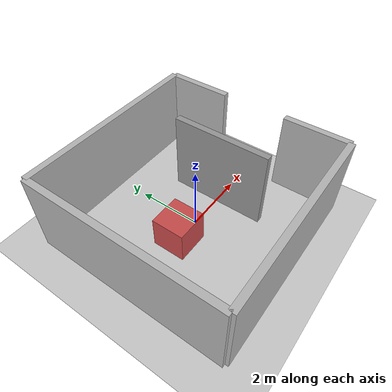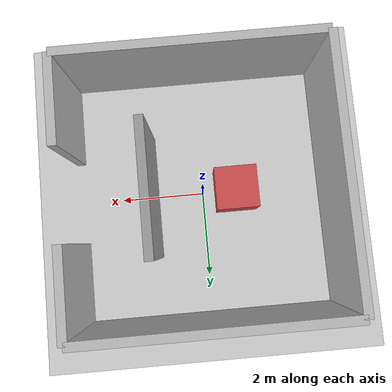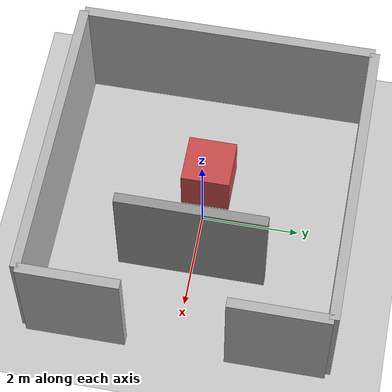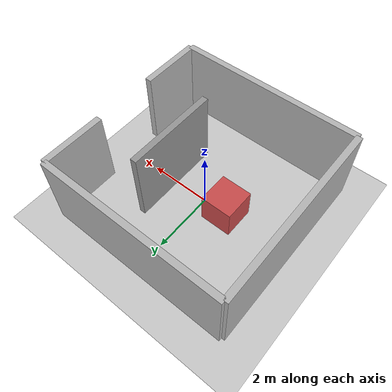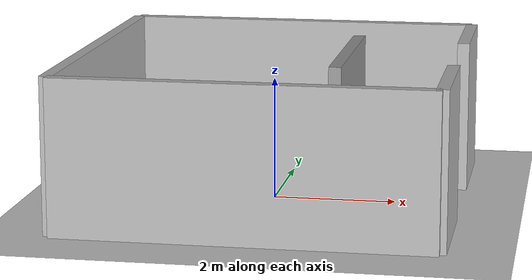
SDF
<?xml version="1.0" ?>
<sdf version="1.9">
  <world name="simple">

    <physics name="1ms" type="ignored">
      <max_step_size>0.001</max_step_size>
      <real_time_factor>1</real_time_factor>
      <real_time_update_rate>1000</real_time_update_rate>
    </physics>

    <plugin name="gz::sim::systems::Physics"
            filename="ignition-gazebo-physics-system"/>
    <plugin name="gz::sim::systems::UserCommands"
            filename="ignition-gazebo-user-commands-system"/>
    <plugin name="gz::sim::systems::SceneBroadcaster"
            filename="ignition-gazebo-scene-broadcaster-system"/>
    <plugin name="gz::sim::systems::Contact"
            filename="ignition-gazebo-contact-system"/>

    <!--  Required for lidar -->
    <plugin name="gz::sim::systems::Sensors"
            filename="ignition-gazebo-sensors-system">
      <render_engine>ogre2</render_engine>
    </plugin>

    <gravity>0 0 -9.8</gravity>
    <magnetic_field>6e-06 2.3e-05 -4.2e-05</magnetic_field>
    <atmosphere type='adiabatic'/>
    <scene>
      <ambient>0.4 0.4 0.4 1</ambient>
      <background>0.7 0.7 0.7 1</background>
      <shadows>true</shadows>
    </scene>

<model name="wall_left">
  <static>true</static>
  <pose>-3 0 1.25 0 0 0</pose>
  <link name="link">
    <collision name="collision">
      <geometry><box><size>0.2 6 2.5</size></box></geometry>
    </collision>
    <visual name="visual">
      <geometry><box><size>0.2 6 2.5</size></box></geometry>
    </visual>
  </link>
</model>

<model name="wall_top1">
  <static>true</static>
  <pose>0 3 1.25 0 0 0</pose>
  <link name="link">
    <collision name="collision">
      <geometry><box><size>6 0.2 2.5</size></box></geometry>
    </collision>
    <visual name="visual">
      <geometry><box><size>6 0.2 2.5</size></box></geometry>
    </visual>
  </link>
</model>

<model name="wall_bottom1">
  <static>true</static>
  <pose>0 -3 1.25 0 0 0</pose>
  <link name="link">
    <collision name="collision">
      <geometry><box><size>6 0.2 2.5</size></box></geometry>
    </collision>
    <visual name="visual">
      <geometry><box><size>6 0.2 2.5</size></box></geometry>
    </visual>
  </link>
</model>

<model name="door1_bottom">
  <static>true</static>
  <pose>3 -2 1.25 0 0 0</pose>
  <link name="link">
    <collision name="collision">
      <geometry><box><size>0.2 2 2.5</size></box></geometry>
    </collision>
    <visual name="visual">
      <geometry><box><size>0.2 2 2.5</size></box></geometry>
    </visual>
  </link>
</model>

<model name="door1_top">
  <static>true</static>
  <pose>3 2 1.25 0 0 0</pose>
  <link name="link">
    <collision name="collision">
      <geometry><box><size>0.2 2 2.5</size></box></geometry>
    </collision>
    <visual name="visual">
      <geometry><box><size>0.2 2 2.5</size></box></geometry>
    </visual>
  </link>
</model>

<model name="ground_plane">
  <static>true</static>
  <link name="link">
    <collision name="collision">
      <geometry>
        <plane>
          <normal>0 0 1</normal>
          <size>100 100</size>
        </plane>
      </geometry>
    </collision>

    <visual name="visual">
      <geometry>
        <plane>
          <normal>0 0 1</normal>
          <size>100 100</size>
        </plane>
      </geometry>
      <material>
        <ambient>0.8 0.8 0.8 1</ambient>
        <diffuse>0.8 0.8 0.8 1</diffuse>
      </material>
    </visual>
  </link>
</model>

<!-- Obstacle 1: Large Box -->
<model name="box_obstacle">
  <static>true</static>
  <pose>-0.8 0 0.5 0 0 0</pose>
  <link name="link">
    <collision name="collision">
      <geometry>
        <box>
          <size>1 1 1</size>
        </box>
      </geometry>
    </collision>
    <visual name="visual">
      <geometry>
        <box>
          <size>1 1 1</size>
        </box>
      </geometry>
      <material>
        <ambient>0.5 0.2 0.2 1</ambient>
        <diffuse>0.8 0.3 0.3 1</diffuse>
      </material>
    </visual>
  </link>
</model>

<!-- Obstacle 2: Vertical Divider Wall -->
<model name="middle_wall">
  <static>true</static>
  <pose>1.2 0 1.25 0 0 0</pose>
  <link name="link">
    <collision name="collision">
      <geometry>
        <box>
          <size>0.2 3 2.5</size>
        </box>
      </geometry>
    </collision>
    <visual name="visual">
      <geometry>
        <box>
          <size>0.2 3 2.5</size>
        </box>
      </geometry>
      <material>
        <ambient>0.3 0.3 0.3 1</ambient>
        <diffuse>0.6 0.6 0.6 1</diffuse>
      </material>
    </visual>
  </link>
</model>

    <light name='sun' type='directional'>
      <pose>0 0 10 0 -0 0</pose>
      <cast_shadows>true</cast_shadows>
      <intensity>1</intensity>
      <direction>-0.5 0.1 -0.9</direction>
      <diffuse>0.8 0.8 0.8 1</diffuse>
      <specular>0.2 0.2 0.2 1</specular>
      <attenuation>
        <range>1000</range>
        <linear>0.01</linear>
        <constant>0.90000000000000002</constant>
        <quadratic>0.001</quadratic>
      </attenuation>
      <spot>
        <inner_angle>0</inner_angle>
        <outer_angle>0</outer_angle>
        <falloff>0</falloff>
      </spot>
    </light>

  </world>
</sdf>
